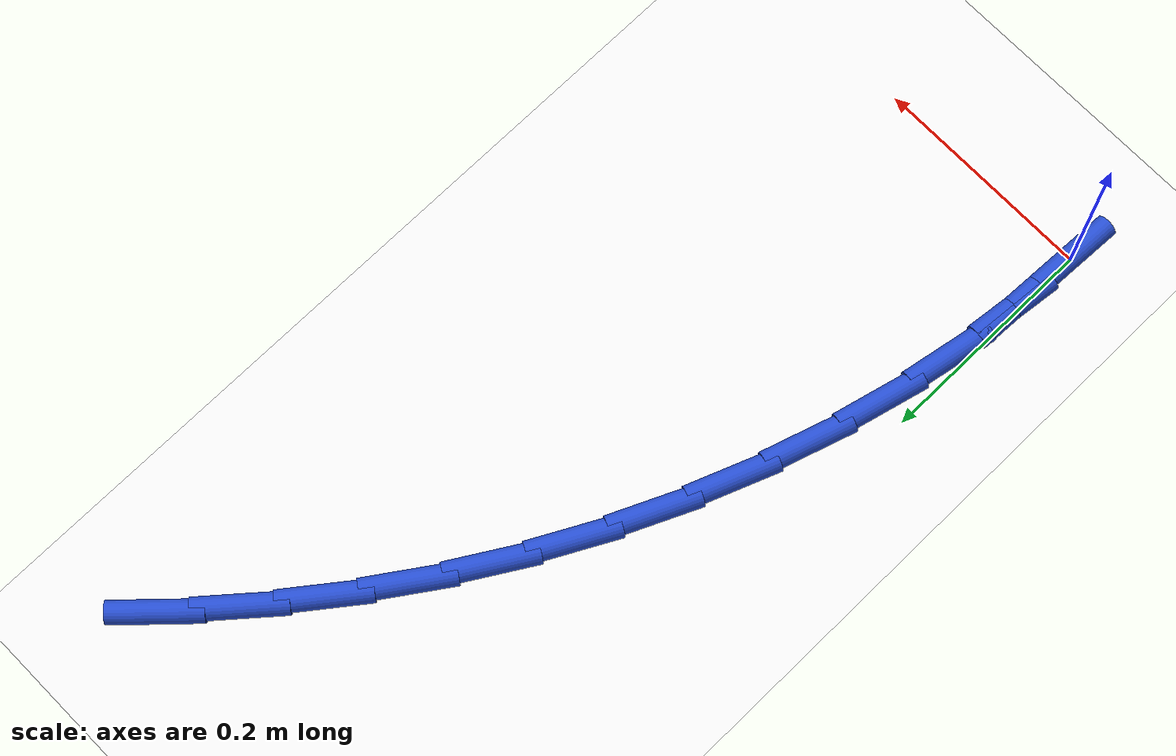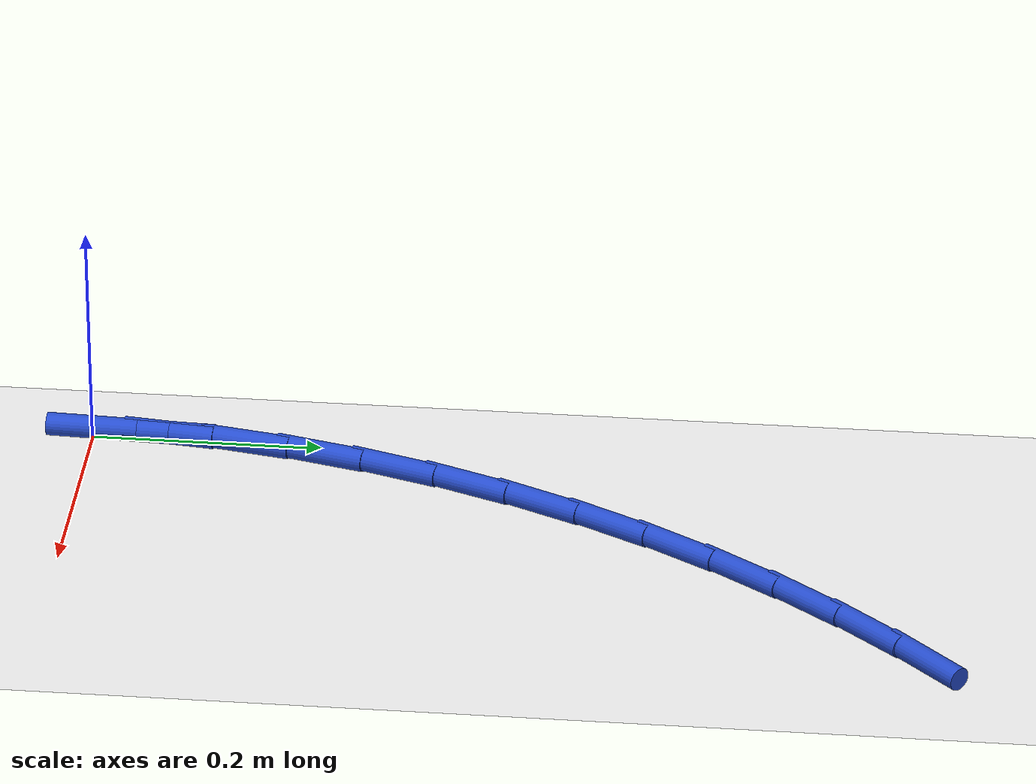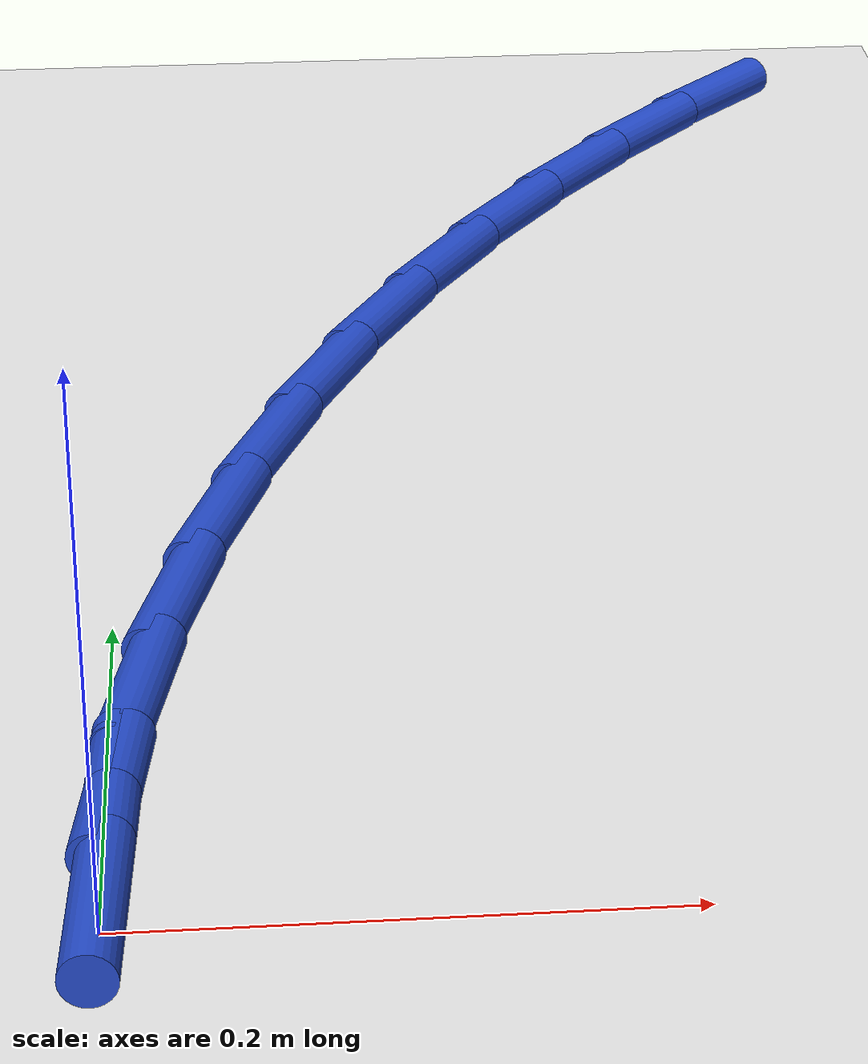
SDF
<sdf version="1.6">
 <world name="default">
  <model name="ground_plane">
   <static>1</static>
   <link name="link">
    <collision name="collision">
     <geometry><plane><normal>0 0 1</normal><size>100 100</size></plane></geometry>
     <surface><friction><ode><mu>100</mu><mu2>50</mu2></ode></friction></surface>
    </collision>
    <visual name="visual">
     <cast_shadows>0</cast_shadows>
     <geometry><plane><normal>0 0 1</normal><size>100 100</size></plane></geometry>
     <material>
      <script><uri>file://media/materials/scripts/gazebo.material</uri><name>Gazebo/WhiteGlow</name></script>
     </material>
    </visual>
   </link>
  </model>
  <model name="line">
   <link name="link_1">
    <pose>0.0031757997084513757 0.06772828167351337 0.01 0 1.57 1.4535168749791776</pose>
    <collision name="collision">
     <geometry><cylinder><radius>0.01</radius><length>0.08</length></cylinder></geometry>
    </collision>
    <visual name="visual">
     <material>
      <script><name>Gazebo/Blue</name><uri>file://media/materials/scripts/gazebo.material</uri></script>
     </material>
     <geometry><cylinder><radius>0.01</radius><length>0.08</length></cylinder></geometry>
    </visual>
   </link>
   <link name="link_2">
    <pose>0.011131681546189667 0.13525393865401603 0.01 0 1.57 1.386335752548086</pose>
    <collision name="collision">
     <geometry><cylinder><radius>0.01</radius><length>0.08</length></cylinder></geometry>
    </collision>
    <visual name="visual">
     <material>
      <script><name>Gazebo/Blue</name><uri>file://media/materials/scripts/gazebo.material</uri></script>
     </material>
     <geometry><cylinder><radius>0.01</radius><length>0.08</length></cylinder></geometry>
    </visual>
   </link>
   <link name="link_3">
    <pose>0.023636618090214306 0.20227521987033545 0.01 0 1.57 1.3219953049795274</pose>
    <collision name="collision">
     <geometry><cylinder><radius>0.01</radius><length>0.08</length></cylinder></geometry>
    </collision>
    <visual name="visual">
     <material>
      <script><name>Gazebo/Blue</name><uri>file://media/materials/scripts/gazebo.material</uri></script>
     </material>
     <geometry><cylinder><radius>0.01</radius><length>0.08</length></cylinder></geometry>
    </visual>
   </link>
   <link name="link_4">
    <pose>0.04045958191752475 0.2684903742512989 0.01 0 1.57 1.2600399448572024</pose>
    <collision name="collision">
     <geometry><cylinder><radius>0.01</radius><length>0.08</length></cylinder></geometry>
    </collision>
    <visual name="visual">
     <material>
      <script><name>Gazebo/Blue</name><uri>file://media/materials/scripts/gazebo.material</uri></script>
     </material>
     <geometry><cylinder><radius>0.01</radius><length>0.08</length></cylinder></geometry>
    </visual>
   </link>
   <link name="link_5">
    <pose>0.06136954560512053 0.3335976507257338 0.01 0 1.57 1.199978286578466</pose>
    <collision name="collision">
     <geometry><cylinder><radius>0.01</radius><length>0.08</length></cylinder></geometry>
    </collision>
    <visual name="visual">
     <material>
      <script><name>Gazebo/Blue</name><uri>file://media/materials/scripts/gazebo.material</uri></script>
     </material>
     <geometry><cylinder><radius>0.01</radius><length>0.08</length></cylinder></geometry>
    </visual>
   </link>
   <link name="link_6">
    <pose>0.08613548173000105 0.39729529822246723 0.01 0 1.57 1.1412939378891824</pose>
    <collision name="collision">
     <geometry><cylinder><radius>0.01</radius><length>0.08</length></cylinder></geometry>
    </collision>
    <visual name="visual">
     <material>
      <script><name>Gazebo/Blue</name><uri>file://media/materials/scripts/gazebo.material</uri></script>
     </material>
     <geometry><cylinder><radius>0.01</radius><length>0.08</length></cylinder></geometry>
    </visual>
   </link>
   <link name="link_7">
    <pose>0.1145263628691659 0.45928156567032696 0.01 0 1.57 1.083450290049871</pose>
    <collision name="collision">
     <geometry><cylinder><radius>0.01</radius><length>0.08</length></cylinder></geometry>
    </collision>
    <visual name="visual">
     <material>
      <script><name>Gazebo/Blue</name><uri>file://media/materials/scripts/gazebo.material</uri></script>
     </material>
     <geometry><cylinder><radius>0.01</radius><length>0.08</length></cylinder></geometry>
    </visual>
   </link>
   <link name="link_8">
    <pose>0.14631116159961455 0.51925470199814 0.01 0 1.57 1.025974993933596</pose>
    <collision name="collision">
     <geometry><cylinder><radius>0.01</radius><length>0.08</length></cylinder></geometry>
    </collision>
    <visual name="visual">
     <material>
      <script><name>Gazebo/Blue</name><uri>file://media/materials/scripts/gazebo.material</uri></script>
     </material>
     <geometry><cylinder><radius>0.01</radius><length>0.08</length></cylinder></geometry>
    </visual>
   </link>
   <link name="link_9">
    <pose>0.18126215469544185 0.5769293812065089 0.01 0 1.57 0.969618715863287</pose>
    <collision name="collision">
     <geometry><cylinder><radius>0.01</radius><length>0.08</length></cylinder></geometry>
    </collision>
    <visual name="visual">
     <material>
      <script><name>Gazebo/Blue</name><uri>file://media/materials/scripts/gazebo.material</uri></script>
     </material>
     <geometry><cylinder><radius>0.01</radius><length>0.08</length></cylinder></geometry>
    </visual>
   </link>
   <link name="link_10">
    <pose>0.21919496425471602 0.6322357456948084 0.01 0 1.57 0.9153818524807269</pose>
    <collision name="collision">
     <geometry><cylinder><radius>0.01</radius><length>0.08</length></cylinder></geometry>
    </collision>
    <visual name="visual">
     <material>
      <script><name>Gazebo/Blue</name><uri>file://media/materials/scripts/gazebo.material</uri></script>
     </material>
     <geometry><cylinder><radius>0.01</radius><length>0.08</length></cylinder></geometry>
    </visual>
   </link>
   <link name="link_11">
    <pose>0.2599557135500786 0.6852555583520901 0.01 0 1.57 0.8635669482498932</pose>
    <collision name="collision">
     <geometry><cylinder><radius>0.01</radius><length>0.08</length></cylinder></geometry>
    </collision>
    <visual name="visual">
     <material>
      <script><name>Gazebo/Blue</name><uri>file://media/materials/scripts/gazebo.material</uri></script>
     </material>
     <geometry><cylinder><radius>0.01</radius><length>0.08</length></cylinder></geometry>
    </visual>
   </link>
   <link name="link_12">
    <pose>0.30339116135080885 0.7360737411034983 0.01 0 1.57 0.8143845139606553</pose>
    <collision name="collision">
     <geometry><cylinder><radius>0.01</radius><length>0.08</length></cylinder></geometry>
    </collision>
    <visual name="visual">
     <material>
      <script><name>Gazebo/Blue</name><uri>file://media/materials/scripts/gazebo.material</uri></script>
     </material>
     <geometry><cylinder><radius>0.01</radius><length>0.08</length></cylinder></geometry>
    </visual>
   </link>
   <link name="link_110">
    <pose>-7.632783294297951e-17 2.3592239273284576e-16 0.01 0 1.57 1.523112546808463</pose>
    <collision name="collision">
     <geometry><cylinder><radius>0.01</radius><length>0.08</length></cylinder></geometry>
    </collision>
    <visual name="visual">
     <material>
      <script><name>Gazebo/Blue</name><uri>file://media/materials/scripts/gazebo.material</uri></script>
     </material>
     <geometry><cylinder><radius>0.01</radius><length>0.08</length></cylinder></geometry>
    </visual>
   </link>
   <link name="link_111">
    <pose>0.0032325558471343295 0.06774013042424618 0.01 0 1.57 1.5231125468084632</pose>
    <collision name="collision">
     <geometry><cylinder><radius>0.01</radius><length>0.08</length></cylinder></geometry>
    </collision>
    <visual name="visual">
     <material>
      <script><name>Gazebo/Blue</name><uri>file://media/materials/scripts/gazebo.material</uri></script>
     </material>
     <geometry><cylinder><radius>0.01</radius><length>0.08</length></cylinder></geometry>
    </visual>
   </link>
  </model>
 </world>
</sdf>
